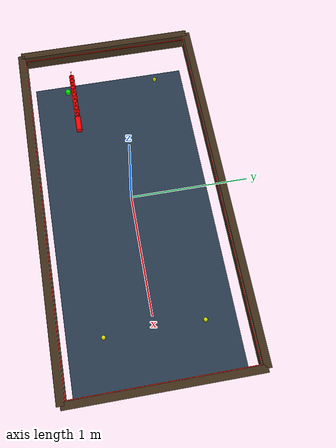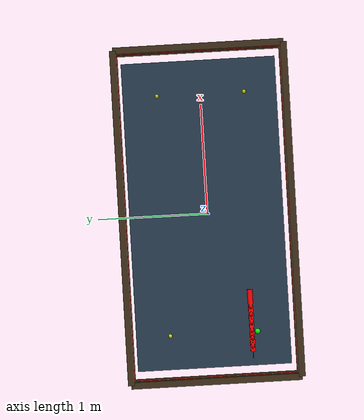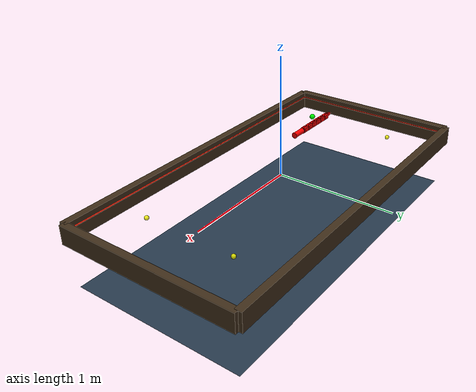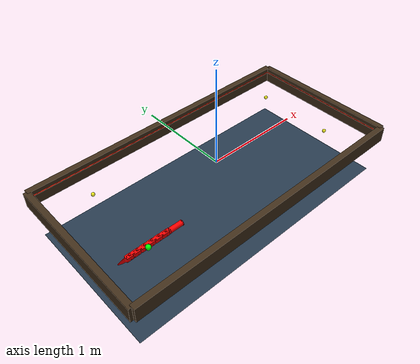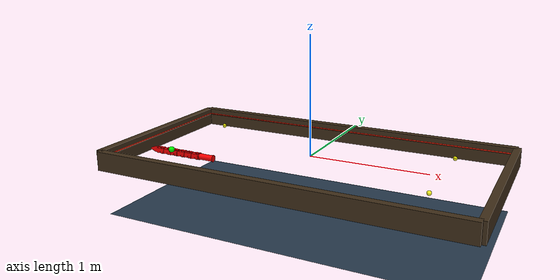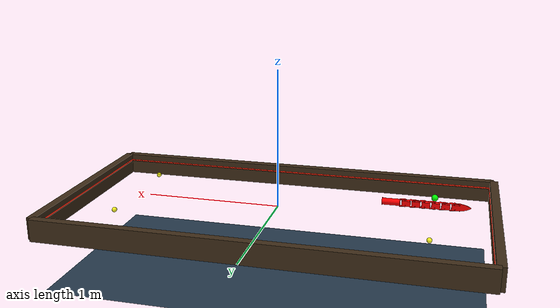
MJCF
<mujoco model="eel_urdf">
  <compiler angle="radian" meshdir="eel_urdf/meshes"/>

  <option timestep="0.001" integrator="RK4" density="998" viscosity="0.001" gravity="0 0 -9.81"/>

  <visual>
    <global fovy="45" offwidth="1920" offheight="1080"/>
    <quality shadowsize="0"/>
    <rgba fog="0 0.5 0.8 1"/>
    <map fogstart="1" fogend="5"/>
  </visual>

  <asset>
    <mesh name="base_link_mesh" file="base_link.STL"/>
    <mesh name="servo1_mesh" file="servo1.STL"/>
    <mesh name="servo2_mesh" file="servo2.STL"/>
    <mesh name="servo3_mesh" file="servo3.STL"/>
    <mesh name="servo4_mesh" file="servo4.STL"/>
    <mesh name="servo5_mesh" file="servo5.STL"/>
    <mesh name="servo6_mesh" file="servo6.STL"/>
    <texture name="texplane" builtin="checker" rgb1=".2 .3 .4" rgb2=".1 .15 .2"
             type="2d" width="512" height="512" mark="cross" markrgb=".8 .8 .8"/>
    <material name="matplane" reflectance="0.5" texture="texplane" texrepeat="4 4" texuniform="true"/>
    <material name="water_visual_mat" rgba="0 0.4 0.9 0.2" reflectance="0" shininess="0" specular="0"/>
    <material name="wall_brown_mat" rgba="0.25 0.18 0.10 1" reflectance="0.02" specular="0" shininess="0"/>
    <material name="eel_mat" rgba="0.79216 0.81961 0.93333 1" reflectance="0.2" specular="0.35" shininess="0.4"/>
    <material name="joint_marker_red" rgba="1 0 0 1" specular="0" shininess="0" reflectance="0"/>
  </asset>

  <contact>
    <exclude body1="base_link" body2="servo1"/>
    <exclude body1="servo1" body2="servo2"/>
    <exclude body1="servo2" body2="servo3"/>
    <exclude body1="servo3" body2="servo4"/>
    <exclude body1="servo4" body2="servo5"/>
    <exclude body1="servo5" body2="servo6"/>
  </contact>

  <worldbody>
    <include file="environment_3x1_5.xml"/>

    <body name="base_link" pos="-0.85 -0.35 -0.02">
      <joint name="root_x" type="slide" pos="0 0 0" axis="1 0 0" limited="false" armature="0.01" damping="0.1"/>
      <joint name="root_y" type="slide" pos="0 0 0" axis="0 1 0" limited="false" armature="0.01" damping="0.1"/>
      <joint name="root_z_rot" type="hinge" pos="0 0 0" axis="0 0 1" limited="false" armature="0.01" damping="0.1"/>
      <inertial pos="0.060736 0 -0.0003316" mass="0.08594" fullinertia="4.4884e-05 0.00010101 9.7427e-05 9.7342e-21 -4.7953e-07 4.7279e-21"/>
      <geom name="base_link_collision" type="mesh" mesh="base_link_mesh" contype="2" conaffinity="1" group="0" rgba="1 0 0 1" fluidshape="ellipsoid"
            fluidcoef="0.5 0.0 0.5 0.5 0.5"/>
      <geom name="base_link_visual" type="mesh" mesh="base_link_mesh" contype="0" conaffinity="0" group="1" material="eel_mat"/>

      <body name="servo1" pos="-0.035 0 0.025433">
        <geom name="servo1_joint_marker" type="sphere" size="0.008" pos="0 0 0" material="joint_marker_red" contype="0" conaffinity="0" group="2"/>
        <inertial pos="-0.012049 -9.537e-08 -0.025445" mass="0.11015" fullinertia="3.4259e-05 6.2761e-05 5.9923e-05 -6.1969e-10 -1.0867e-07 -1.5471e-12"/>
        <joint name="servo1" pos="0 0 0" axis="0 0 1" range="-1.5 1.5" actuatorfrcrange="-10 10" armature="0.05" damping="1.5"/>
        <geom name="servo1_collision" type="mesh" mesh="servo1_mesh" contype="2" conaffinity="1" group="0" rgba="1 0 0 1" fluidshape="ellipsoid"
              fluidcoef="0.5 0.0 0.5 0.5 0.5"/>
        <geom name="servo1_visual" type="mesh" mesh="servo1_mesh" contype="0" conaffinity="0" group="1" material="eel_mat"/>

        <body name="servo2" pos="-0.072 0 0">
          <geom name="servo2_joint_marker" type="sphere" size="0.008" pos="0 0 0" material="joint_marker_red" contype="0" conaffinity="0" group="2"/>
          <inertial pos="-0.012049 -9.537e-08 -0.025445" mass="0.11015" fullinertia="3.4259e-05 6.2761e-05 5.9923e-05 -6.1969e-10 -1.0867e-07 -1.5471e-12"/>
          <joint name="servo2" pos="0 0 0" axis="0 0 1" range="-1.5 1.5" actuatorfrcrange="-10 10" armature="0.05" damping="1.5"/>
          <geom name="servo2_collision" type="mesh" mesh="servo2_mesh" contype="2" conaffinity="1" group="0" rgba="1 0 0 1" fluidshape="ellipsoid"
                fluidcoef="0.5 0.0 0.5 0.5 0.5"/>
          <geom name="servo2_visual" type="mesh" mesh="servo2_mesh" contype="0" conaffinity="0" group="1" material="eel_mat"/>

          <body name="servo3" pos="-0.072 0 0">
            <geom name="servo3_joint_marker" type="sphere" size="0.008" pos="0 0 0" material="joint_marker_red" contype="0" conaffinity="0" group="2"/>
            <inertial pos="-0.012049 -9.537e-08 -0.025445" mass="0.11015" fullinertia="3.4259e-05 6.2761e-05 5.9923e-05 -6.1969e-10 -1.0867e-07 -1.5471e-12"/>
            <joint name="servo3" pos="0 0 0" axis="0 0 1" range="-1.5 1.5" actuatorfrcrange="-10 10" armature="0.05" damping="1.5"/>
            <geom name="servo3_collision" type="mesh" mesh="servo3_mesh" contype="2" conaffinity="1" group="0" rgba="1 0 0 1" fluidshape="ellipsoid"
                  fluidcoef="0.5 0.0 0.5 0.5 0.5"/>
            <geom name="servo3_visual" type="mesh" mesh="servo3_mesh" contype="0" conaffinity="0" group="1" material="eel_mat"/>

            <body name="servo4" pos="-0.072 0 0">
              <geom name="servo4_joint_marker" type="sphere" size="0.008" pos="0 0 0" material="joint_marker_red" contype="0" conaffinity="0" group="2"/>
              <inertial pos="-0.0120487147742294 -9.53697419864633e-08 -0.0254453955715893" mass="0.110152499571834" fullinertia="3.42586243719868e-05 6.27609879607102e-05 5.99228972528301e-05 -6.1968780952349e-10 -1.08668371449204e-07 -1.54710052350768e-12"/>
              <joint name="servo4" pos="0 0 0" axis="0 0 1" range="-1.5 1.5" actuatorfrcrange="-10 10" armature="0.05" damping="1.5"/>
              <geom name="servo4_collision" type="mesh" mesh="servo4_mesh" contype="2" conaffinity="1" group="0" rgba="1 0 0 1" fluidshape="ellipsoid"
                    fluidcoef="0.5 0.0 0.5 0.5 0.5"/>
              <geom name="servo4_visual" type="mesh" mesh="servo4_mesh" contype="0" conaffinity="0" group="1" material="eel_mat"/>

              <body name="servo5" pos="-0.072 0 0">
                <geom name="servo5_joint_marker" type="sphere" size="0.008" pos="0 0 0" material="joint_marker_red" contype="0" conaffinity="0" group="2"/>
                <inertial pos="-0.012049 -9.537e-08 -0.025445" mass="0.11015" fullinertia="3.4259e-05 6.2761e-05 5.9923e-05 -6.1969e-10 -1.0867e-07 -1.5471e-12"/>
                <joint name="servo5" pos="0 0 0" axis="0 0 1" range="-1.5 1.5" actuatorfrcrange="-10 10" armature="0.05" damping="1.5"/>
                <geom name="servo5_collision" type="mesh" mesh="servo5_mesh" contype="2" conaffinity="1" group="0" rgba="1 0 0 1" fluidshape="ellipsoid"
                      fluidcoef="0.5 0.0 0.5 0.5 0.5"/>
                <geom name="servo5_visual" type="mesh" mesh="servo5_mesh" contype="0" conaffinity="0" group="1" material="eel_mat"/>

                <body name="servo6" pos="-0.072 -0.00005 0">
                  <geom name="servo6_joint_marker" type="sphere" size="0.008" pos="0 0 0" material="joint_marker_red" contype="0" conaffinity="0" group="2"/>
                  <inertial pos="-0.014138 1.4332e-05 -0.025449" mass="0.11461" fullinertia="3.3039e-05 7.6484e-05 7.4549e-05 -1.9391e-07 -1.414e-07 -5.6905e-10"/>
                  <joint name="servo6" pos="0 0 0" axis="0 0 1" range="-1.5 1.5" actuatorfrcrange="-10 10" armature="0.05" damping="1.5"/>
                  <geom name="servo6_collision" type="mesh" mesh="servo6_mesh" contype="2" conaffinity="1" group="0" rgba="1 0 0 1" fluidshape="ellipsoid"
                        fluidcoef="0.5 0.0 0.5 0.5 0.5"/>
                  <geom name="servo6_visual" type="mesh" mesh="servo6_mesh" contype="0" conaffinity="0" group="1" material="eel_mat"/>
                </body>
              </body>
            </body>
          </body>
        </body>
      </body>
    </body>
  </worldbody>

  <actuator>
    <position joint="servo1" kp="100"/>
    <position joint="servo2" kp="100"/>
    <position joint="servo3" kp="100"/>
    <position joint="servo4" kp="100"/>
    <position joint="servo5" kp="100"/>
    <position joint="servo6" kp="100"/>
  </actuator>
</mujoco>

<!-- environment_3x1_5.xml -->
<mujoco>
  <light directional="true" pos="0 0 5" dir="0 0 -1"
         diffuse="0.6 0.6 0.6" specular="0.15 0.15 0.15"/>
  <light pos="1.5 0.75 1" diffuse="0.15 0.2 0.25" specular="0 0 0"/>
  <light pos="-1.5 0 1" diffuse="0.25 0.25 0.3" specular="0 0 0"/>

  <!-- 3 m x 1.5 m tank centered at the world origin. MuJoCo plane sizes are visual half-extents. -->
  <geom name="floor" pos="0 0 -0.5" size="1.5 0.75 0.1" type="plane" material="matplane" contype="1" conaffinity="1"/>
  <geom name="water_surface" type="plane" pos="0 0 0" size="1.48 0.73 0.01" material="water_visual_mat" contype="0" conaffinity="0" group="1"/>

  <geom name="course_bottom" type="capsule" fromto="-1.5 -0.75 0.01 1.5 -0.75 0.01" size="0.006"
        rgba="1 0.15 0.05 0.9" contype="0" conaffinity="0" group="1"/>
  <geom name="course_right" type="capsule" fromto="1.5 -0.75 0.01 1.5 0.75 0.01" size="0.006"
        rgba="1 0.15 0.05 0.9" contype="0" conaffinity="0" group="1"/>
  <geom name="course_top" type="capsule" fromto="1.5 0.75 0.01 -1.5 0.75 0.01" size="0.006"
        rgba="1 0.15 0.05 0.9" contype="0" conaffinity="0" group="1"/>
  <geom name="course_left" type="capsule" fromto="-1.5 0.75 0.01 -1.5 -0.75 0.01" size="0.006"
        rgba="1 0.15 0.05 0.9" contype="0" conaffinity="0" group="1"/>

  <!-- Collision boards around the 3 m x 1.5 m tank. Robot collision geoms use contype=2/conaffinity=1. -->
  <geom name="wall_bottom" type="box" pos="0 -0.78 -0.02" size="1.53 0.03 0.08"
        material="wall_brown_mat" contype="1" conaffinity="2" group="0"/>
  <geom name="wall_top" type="box" pos="0 0.78 -0.02" size="1.53 0.03 0.08"
        material="wall_brown_mat" contype="1" conaffinity="2" group="0"/>
  <geom name="wall_left" type="box" pos="-1.53 0 -0.02" size="0.03 0.78 0.08"
        material="wall_brown_mat" contype="1" conaffinity="2" group="0"/>
  <geom name="wall_right" type="box" pos="1.53 0 -0.02" size="0.03 0.78 0.08"
        material="wall_brown_mat" contype="1" conaffinity="2" group="0"/>

  <geom name="start_marker" type="sphere" pos="-1.10 -0.40 0.02" size="0.025"
        rgba="0 1 0 0.9" contype="0" conaffinity="0" group="1"/>
  <geom name="corner_marker_1" type="sphere" pos="1.10 -0.40 0.02" size="0.018"
        rgba="1 1 0 0.85" contype="0" conaffinity="0" group="1"/>
  <geom name="corner_marker_2" type="sphere" pos="1.10 0.40 0.02" size="0.018"
        rgba="1 1 0 0.85" contype="0" conaffinity="0" group="1"/>
  <geom name="corner_marker_3" type="sphere" pos="-1.10 0.40 0.02" size="0.018"
        rgba="1 1 0 0.85" contype="0" conaffinity="0" group="1"/>
</mujoco>
